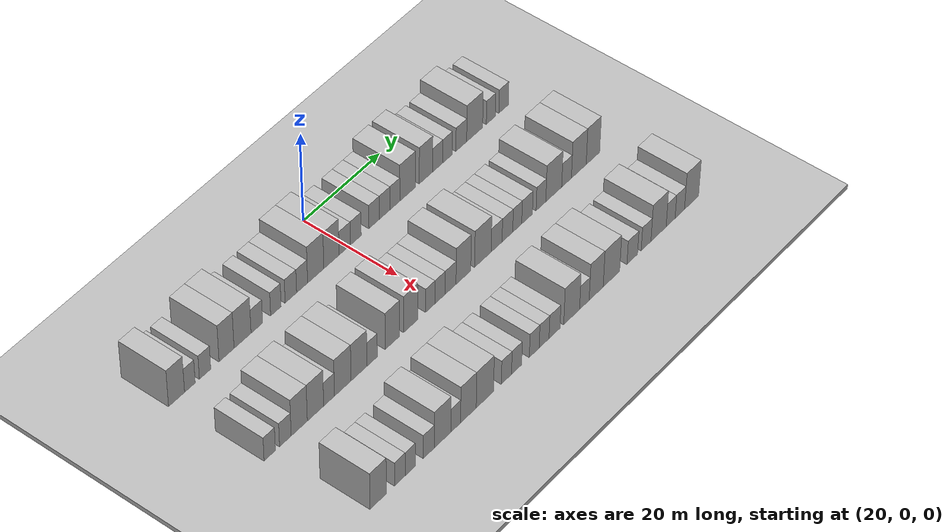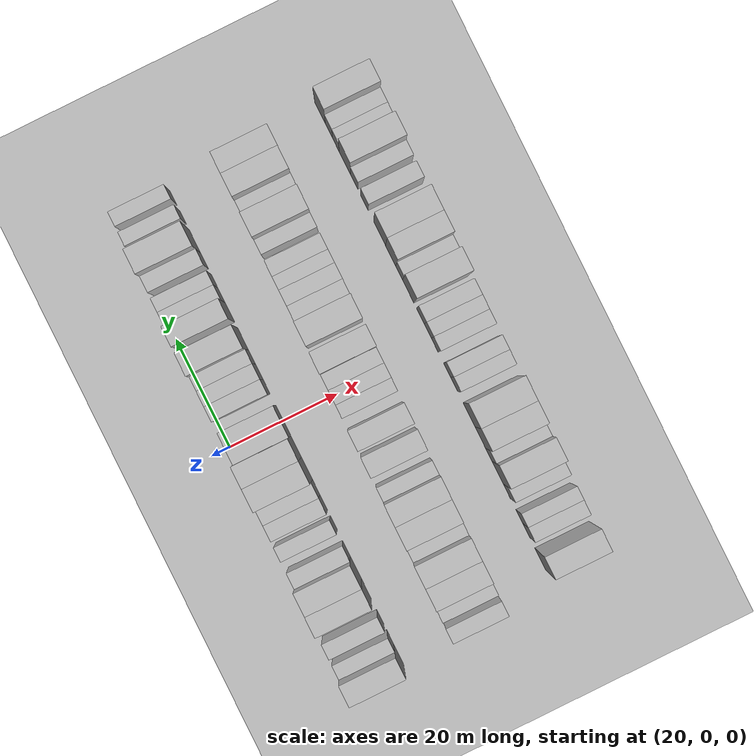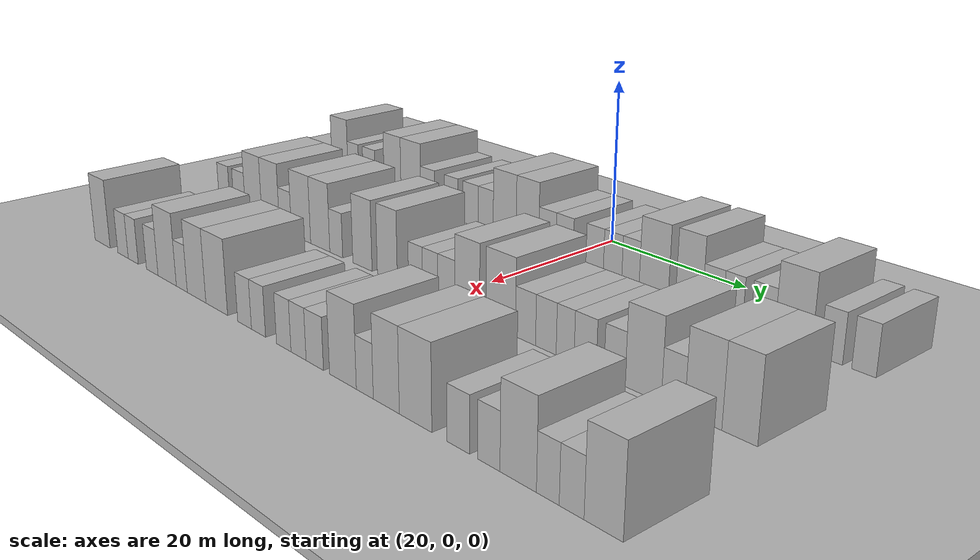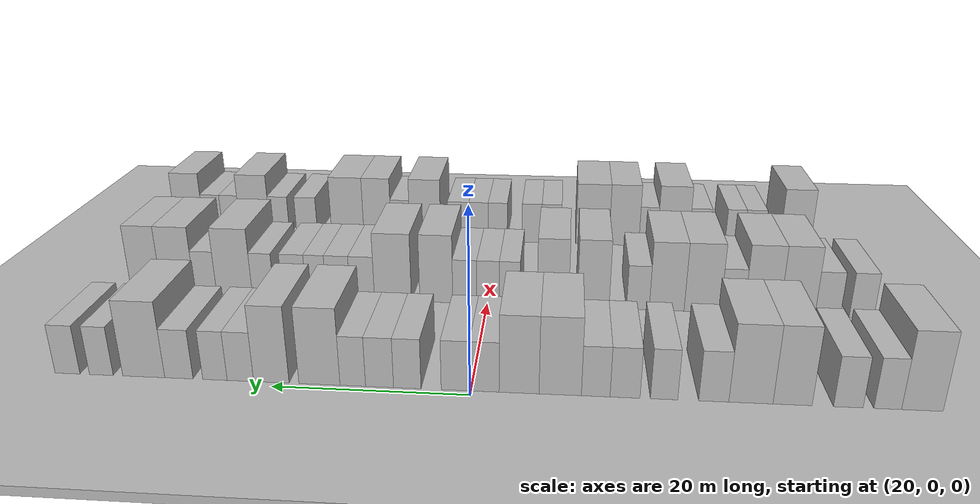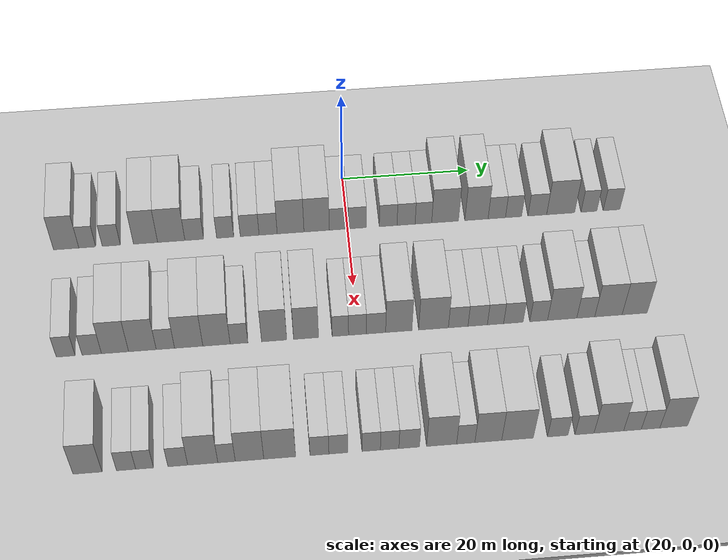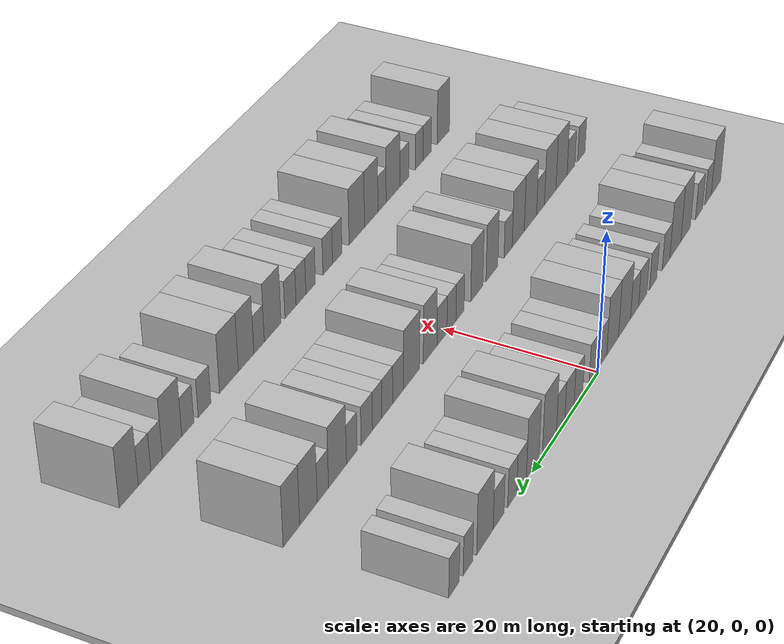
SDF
<sdf version="1.6">
 <world name="default">
  <include><name>ground_plane_1</name><uri>model://HANNAS_ground_plane</uri></include>
  <include>
   <name>ground_plane_2</name>
   <uri>model://HANNAS_ground_plane</uri>
   <pose>100 0 0  0 0 0</pose>
  </include>
  <model name="building_48">
   <static>1</static>
   <pose>25.0000 -43.0749 0 0.000000 0.000000 0.000000</pose>
   <link name="link">
    <pose>0 0 4.50 0 0 0</pose>
    <collision name="collision"><geometry><box><size>10.0000 3.8341 9.0000</size></box></geometry></collision>
    <visual name="visual">
     <cast_shadows>0</cast_shadows>
     <geometry><box><size>10.0000 3.8341 9.0000</size></box></geometry>
     <material>
      <script>
       <uri>model://HANNAS_wall/materials/scripts</uri>
       <uri>model://HANNAS_wall/materials/textures</uri>
       <name>vrc/HANNAS_wall</name>
      </script>
     </material>
    </visual>
   </link>
  </model>
  <model name="building_49">
   <static>1</static>
   <pose>25.0000 -39.8797 0 0.000000 0.000000 0.000000</pose>
   <link name="link">
    <pose>0 0 3.00 0 0 0</pose>
    <collision name="collision"><geometry><box><size>10.0000 2.5561 6.0000</size></box></geometry></collision>
    <visual name="visual">
     <cast_shadows>0</cast_shadows>
     <geometry><box><size>10.0000 2.5561 6.0000</size></box></geometry>
     <material>
      <script>
       <uri>model://HANNAS_wall/materials/scripts</uri>
       <uri>model://HANNAS_wall/materials/textures</uri>
       <name>vrc/HANNAS_wall</name>
      </script>
     </material>
    </visual>
   </link>
  </model>
  <model name="building_50">
   <static>1</static>
   <pose>25.0000 -36.2231 0 0.000000 0.000000 0.000000</pose>
   <link name="link">
    <pose>0 0 3.00 0 0 0</pose>
    <collision name="collision"><geometry><box><size>10.0000 2.7571 6.0000</size></box></geometry></collision>
    <visual name="visual">
     <cast_shadows>0</cast_shadows>
     <geometry><box><size>10.0000 2.7571 6.0000</size></box></geometry>
     <material>
      <script>
       <uri>model://HANNAS_wall/materials/scripts</uri>
       <uri>model://HANNAS_wall/materials/textures</uri>
       <name>vrc/HANNAS_wall</name>
      </script>
     </material>
    </visual>
   </link>
  </model>
  <model name="building_51">
   <static>1</static>
   <pose>25.0000 -31.0059 0 0.000000 0.000000 0.000000</pose>
   <link name="link">
    <pose>0 0 4.50 0 0 0</pose>
    <collision name="collision"><geometry><box><size>10.0000 3.6773 9.0000</size></box></geometry></collision>
    <visual name="visual">
     <cast_shadows>0</cast_shadows>
     <geometry><box><size>10.0000 3.6773 9.0000</size></box></geometry>
     <material>
      <script>
       <uri>model://HANNAS_wall/materials/scripts</uri>
       <uri>model://HANNAS_wall/materials/textures</uri>
       <name>vrc/HANNAS_wall</name>
      </script>
     </material>
    </visual>
   </link>
  </model>
  <model name="building_52">
   <static>1</static>
   <pose>25.0000 -27.0815 0 0.000000 0.000000 0.000000</pose>
   <link name="link">
    <pose>0 0 4.50 0 0 0</pose>
    <collision name="collision"><geometry><box><size>10.0000 4.1716 9.0000</size></box></geometry></collision>
    <visual name="visual">
     <cast_shadows>0</cast_shadows>
     <geometry><box><size>10.0000 4.1716 9.0000</size></box></geometry>
     <material>
      <script>
       <uri>model://HANNAS_wall/materials/scripts</uri>
       <uri>model://HANNAS_wall/materials/textures</uri>
       <name>vrc/HANNAS_wall</name>
      </script>
     </material>
    </visual>
   </link>
  </model>
  <model name="building_53">
   <static>1</static>
   <pose>25.0000 -23.5647 0 0.000000 0.000000 0.000000</pose>
   <link name="link">
    <pose>0 0 3.00 0 0 0</pose>
    <collision name="collision"><geometry><box><size>10.0000 2.8620 6.0000</size></box></geometry></collision>
    <visual name="visual">
     <cast_shadows>0</cast_shadows>
     <geometry><box><size>10.0000 2.8620 6.0000</size></box></geometry>
     <material>
      <script>
       <uri>model://HANNAS_wall/materials/scripts</uri>
       <uri>model://HANNAS_wall/materials/textures</uri>
       <name>vrc/HANNAS_wall</name>
      </script>
     </material>
    </visual>
   </link>
  </model>
  <model name="building_54">
   <static>1</static>
   <pose>25.0000 -18.8264 0 0.000000 0.000000 0.000000</pose>
   <link name="link">
    <pose>0 0 3.00 0 0 0</pose>
    <collision name="collision"><geometry><box><size>10.0000 2.6146 6.0000</size></box></geometry></collision>
    <visual name="visual">
     <cast_shadows>0</cast_shadows>
     <geometry><box><size>10.0000 2.6146 6.0000</size></box></geometry>
     <material>
      <script>
       <uri>model://HANNAS_wall/materials/scripts</uri>
       <uri>model://HANNAS_wall/materials/textures</uri>
       <name>vrc/HANNAS_wall</name>
      </script>
     </material>
    </visual>
   </link>
  </model>
  <model name="building_55">
   <static>1</static>
   <pose>25.0000 -15.0738 0 0.000000 0.000000 0.000000</pose>
   <link name="link">
    <pose>0 0 3.00 0 0 0</pose>
    <collision name="collision"><geometry><box><size>10.0000 2.8906 6.0000</size></box></geometry></collision>
    <visual name="visual">
     <cast_shadows>0</cast_shadows>
     <geometry><box><size>10.0000 2.8906 6.0000</size></box></geometry>
     <material>
      <script>
       <uri>model://HANNAS_wall/materials/scripts</uri>
       <uri>model://HANNAS_wall/materials/textures</uri>
       <name>vrc/HANNAS_wall</name>
      </script>
     </material>
    </visual>
   </link>
  </model>
  <model name="building_56">
   <static>1</static>
   <pose>25.0000 -12.2399 0 0.000000 0.000000 0.000000</pose>
   <link name="link">
    <pose>0 0 3.00 0 0 0</pose>
    <collision name="collision"><geometry><box><size>10.0000 2.7773 6.0000</size></box></geometry></collision>
    <visual name="visual">
     <cast_shadows>0</cast_shadows>
     <geometry><box><size>10.0000 2.7773 6.0000</size></box></geometry>
     <material>
      <script>
       <uri>model://HANNAS_wall/materials/scripts</uri>
       <uri>model://HANNAS_wall/materials/textures</uri>
       <name>vrc/HANNAS_wall</name>
      </script>
     </material>
    </visual>
   </link>
  </model>
  <model name="building_57">
   <static>1</static>
   <pose>25.0000 -8.7892 0 0.000000 0.000000 0.000000</pose>
   <link name="link">
    <pose>0 0 4.50 0 0 0</pose>
    <collision name="collision"><geometry><box><size>10.0000 4.1240 9.0000</size></box></geometry></collision>
    <visual name="visual">
     <cast_shadows>0</cast_shadows>
     <geometry><box><size>10.0000 4.1240 9.0000</size></box></geometry>
     <material>
      <script>
       <uri>model://HANNAS_wall/materials/scripts</uri>
       <uri>model://HANNAS_wall/materials/textures</uri>
       <name>vrc/HANNAS_wall</name>
      </script>
     </material>
    </visual>
   </link>
  </model>
  <model name="building_58">
   <static>1</static>
   <pose>25.0000 -4.7703 0 0.000000 0.000000 0.000000</pose>
   <link name="link">
    <pose>0 0 4.50 0 0 0</pose>
    <collision name="collision"><geometry><box><size>10.0000 3.9138 9.0000</size></box></geometry></collision>
    <visual name="visual">
     <cast_shadows>0</cast_shadows>
     <geometry><box><size>10.0000 3.9138 9.0000</size></box></geometry>
     <material>
      <script>
       <uri>model://HANNAS_wall/materials/scripts</uri>
       <uri>model://HANNAS_wall/materials/textures</uri>
       <name>vrc/HANNAS_wall</name>
      </script>
     </material>
    </visual>
   </link>
  </model>
  <model name="building_59">
   <static>1</static>
   <pose>25.0000 -1.3615 0 0.000000 0.000000 0.000000</pose>
   <link name="link">
    <pose>0 0 3.00 0 0 0</pose>
    <collision name="collision"><geometry><box><size>10.0000 2.9037 6.0000</size></box></geometry></collision>
    <visual name="visual">
     <cast_shadows>0</cast_shadows>
     <geometry><box><size>10.0000 2.9037 6.0000</size></box></geometry>
     <material>
      <script>
       <uri>model://HANNAS_wall/materials/scripts</uri>
       <uri>model://HANNAS_wall/materials/textures</uri>
       <name>vrc/HANNAS_wall</name>
      </script>
     </material>
    </visual>
   </link>
  </model>
  <model name="building_60">
   <static>1</static>
   <pose>25.0000 1.4955 0 0.000000 0.000000 0.000000</pose>
   <link name="link">
    <pose>0 0 3.00 0 0 0</pose>
    <collision name="collision"><geometry><box><size>10.0000 2.8104 6.0000</size></box></geometry></collision>
    <visual name="visual">
     <cast_shadows>0</cast_shadows>
     <geometry><box><size>10.0000 2.8104 6.0000</size></box></geometry>
     <material>
      <script>
       <uri>model://HANNAS_wall/materials/scripts</uri>
       <uri>model://HANNAS_wall/materials/textures</uri>
       <name>vrc/HANNAS_wall</name>
      </script>
     </material>
    </visual>
   </link>
  </model>
  <model name="building_61">
   <static>1</static>
   <pose>25.0000 6.2721 0 0.000000 0.000000 0.000000</pose>
   <link name="link">
    <pose>0 0 3.00 0 0 0</pose>
    <collision name="collision"><geometry><box><size>10.0000 2.7427 6.0000</size></box></geometry></collision>
    <visual name="visual">
     <cast_shadows>0</cast_shadows>
     <geometry><box><size>10.0000 2.7427 6.0000</size></box></geometry>
     <material>
      <script>
       <uri>model://HANNAS_wall/materials/scripts</uri>
       <uri>model://HANNAS_wall/materials/textures</uri>
       <name>vrc/HANNAS_wall</name>
      </script>
     </material>
    </visual>
   </link>
  </model>
  <model name="building_62">
   <static>1</static>
   <pose>25.0000 9.0452 0 0.000000 0.000000 0.000000</pose>
   <link name="link">
    <pose>0 0 3.00 0 0 0</pose>
    <collision name="collision"><geometry><box><size>10.0000 2.8036 6.0000</size></box></geometry></collision>
    <visual name="visual">
     <cast_shadows>0</cast_shadows>
     <geometry><box><size>10.0000 2.8036 6.0000</size></box></geometry>
     <material>
      <script>
       <uri>model://HANNAS_wall/materials/scripts</uri>
       <uri>model://HANNAS_wall/materials/textures</uri>
       <name>vrc/HANNAS_wall</name>
      </script>
     </material>
    </visual>
   </link>
  </model>
  <model name="building_63">
   <static>1</static>
   <pose>25.0000 11.7320 0 0.000000 0.000000 0.000000</pose>
   <link name="link">
    <pose>0 0 3.00 0 0 0</pose>
    <collision name="collision"><geometry><box><size>10.0000 2.5698 6.0000</size></box></geometry></collision>
    <visual name="visual">
     <cast_shadows>0</cast_shadows>
     <geometry><box><size>10.0000 2.5698 6.0000</size></box></geometry>
     <material>
      <script>
       <uri>model://HANNAS_wall/materials/scripts</uri>
       <uri>model://HANNAS_wall/materials/textures</uri>
       <name>vrc/HANNAS_wall</name>
      </script>
     </material>
    </visual>
   </link>
  </model>
  <model name="building_64">
   <static>1</static>
   <pose>25.0000 15.0980 0 0.000000 0.000000 0.000000</pose>
   <link name="link">
    <pose>0 0 4.50 0 0 0</pose>
    <collision name="collision"><geometry><box><size>10.0000 4.1623 9.0000</size></box></geometry></collision>
    <visual name="visual">
     <cast_shadows>0</cast_shadows>
     <geometry><box><size>10.0000 4.1623 9.0000</size></box></geometry>
     <material>
      <script>
       <uri>model://HANNAS_wall/materials/scripts</uri>
       <uri>model://HANNAS_wall/materials/textures</uri>
       <name>vrc/HANNAS_wall</name>
      </script>
     </material>
    </visual>
   </link>
  </model>
  <model name="building_65">
   <static>1</static>
   <pose>25.0000 19.9861 0 0.000000 0.000000 0.000000</pose>
   <link name="link">
    <pose>0 0 4.50 0 0 0</pose>
    <collision name="collision"><geometry><box><size>10.0000 3.6139 9.0000</size></box></geometry></collision>
    <visual name="visual">
     <cast_shadows>0</cast_shadows>
     <geometry><box><size>10.0000 3.6139 9.0000</size></box></geometry>
     <material>
      <script>
       <uri>model://HANNAS_wall/materials/scripts</uri>
       <uri>model://HANNAS_wall/materials/textures</uri>
       <name>vrc/HANNAS_wall</name>
      </script>
     </material>
    </visual>
   </link>
  </model>
  <model name="building_66">
   <static>1</static>
   <pose>25.0000 23.1474 0 0.000000 0.000000 0.000000</pose>
   <link name="link">
    <pose>0 0 3.00 0 0 0</pose>
    <collision name="collision"><geometry><box><size>10.0000 2.7086 6.0000</size></box></geometry></collision>
    <visual name="visual">
     <cast_shadows>0</cast_shadows>
     <geometry><box><size>10.0000 2.7086 6.0000</size></box></geometry>
     <material>
      <script>
       <uri>model://HANNAS_wall/materials/scripts</uri>
       <uri>model://HANNAS_wall/materials/textures</uri>
       <name>vrc/HANNAS_wall</name>
      </script>
     </material>
    </visual>
   </link>
  </model>
  <model name="building_67">
   <static>1</static>
   <pose>25.0000 25.7594 0 0.000000 0.000000 0.000000</pose>
   <link name="link">
    <pose>0 0 3.00 0 0 0</pose>
    <collision name="collision"><geometry><box><size>10.0000 2.5156 6.0000</size></box></geometry></collision>
    <visual name="visual">
     <cast_shadows>0</cast_shadows>
     <geometry><box><size>10.0000 2.5156 6.0000</size></box></geometry>
     <material>
      <script>
       <uri>model://HANNAS_wall/materials/scripts</uri>
       <uri>model://HANNAS_wall/materials/textures</uri>
       <name>vrc/HANNAS_wall</name>
      </script>
     </material>
    </visual>
   </link>
  </model>
  <model name="building_68">
   <static>1</static>
   <pose>25.0000 29.4810 0 0.000000 0.000000 0.000000</pose>
   <link name="link">
    <pose>0 0 3.00 0 0 0</pose>
    <collision name="collision"><geometry><box><size>10.0000 2.9276 6.0000</size></box></geometry></collision>
    <visual name="visual">
     <cast_shadows>0</cast_shadows>
     <geometry><box><size>10.0000 2.9276 6.0000</size></box></geometry>
     <material>
      <script>
       <uri>model://HANNAS_wall/materials/scripts</uri>
       <uri>model://HANNAS_wall/materials/textures</uri>
       <name>vrc/HANNAS_wall</name>
      </script>
     </material>
    </visual>
   </link>
  </model>
  <model name="building_69">
   <static>1</static>
   <pose>25.0000 33.1323 0 0.000000 0.000000 0.000000</pose>
   <link name="link">
    <pose>0 0 4.50 0 0 0</pose>
    <collision name="collision"><geometry><box><size>10.0000 4.3748 9.0000</size></box></geometry></collision>
    <visual name="visual">
     <cast_shadows>0</cast_shadows>
     <geometry><box><size>10.0000 4.3748 9.0000</size></box></geometry>
     <material>
      <script>
       <uri>model://HANNAS_wall/materials/scripts</uri>
       <uri>model://HANNAS_wall/materials/textures</uri>
       <name>vrc/HANNAS_wall</name>
      </script>
     </material>
    </visual>
   </link>
  </model>
  <model name="building_70">
   <static>1</static>
   <pose>25.0000 37.5630 0 0.000000 0.000000 0.000000</pose>
   <link name="link">
    <pose>0 0 3.00 0 0 0</pose>
    <collision name="collision"><geometry><box><size>10.0000 2.4867 6.0000</size></box></geometry></collision>
    <visual name="visual">
     <cast_shadows>0</cast_shadows>
     <geometry><box><size>10.0000 2.4867 6.0000</size></box></geometry>
     <material>
      <script>
       <uri>model://HANNAS_wall/materials/scripts</uri>
       <uri>model://HANNAS_wall/materials/textures</uri>
       <name>vrc/HANNAS_wall</name>
      </script>
     </material>
    </visual>
   </link>
  </model>
  <model name="building_71">
   <static>1</static>
   <pose>25.0000 41.1190 0 0.000000 0.000000 0.000000</pose>
   <link name="link">
    <pose>0 0 3.00 0 0 0</pose>
    <collision name="collision"><geometry><box><size>10.0000 2.6253 6.0000</size></box></geometry></collision>
    <visual name="visual">
     <cast_shadows>0</cast_shadows>
     <geometry><box><size>10.0000 2.6253 6.0000</size></box></geometry>
     <material>
      <script>
       <uri>model://HANNAS_wall/materials/scripts</uri>
       <uri>model://HANNAS_wall/materials/textures</uri>
       <name>vrc/HANNAS_wall</name>
      </script>
     </material>
    </visual>
   </link>
  </model>
  <model name="building_170">
   <static>1</static>
   <pose>44.0000 -42.7477 0 0.000000 0.000000 0.000000</pose>
   <link name="link">
    <pose>0 0 3.00 0 0 0</pose>
    <collision name="collision"><geometry><box><size>10.0000 2.7288 6.0000</size></box></geometry></collision>
    <visual name="visual">
     <cast_shadows>0</cast_shadows>
     <geometry><box><size>10.0000 2.7288 6.0000</size></box></geometry>
     <material>
      <script>
       <uri>model://HANNAS_wall/materials/scripts</uri>
       <uri>model://HANNAS_wall/materials/textures</uri>
       <name>vrc/HANNAS_wall</name>
      </script>
     </material>
    </visual>
   </link>
  </model>
  <model name="building_171">
   <static>1</static>
   <pose>44.0000 -38.9744 0 0.000000 0.000000 0.000000</pose>
   <link name="link">
    <pose>0 0 3.00 0 0 0</pose>
    <collision name="collision"><geometry><box><size>10.0000 2.8179 6.0000</size></box></geometry></collision>
    <visual name="visual">
     <cast_shadows>0</cast_shadows>
     <geometry><box><size>10.0000 2.8179 6.0000</size></box></geometry>
     <material>
      <script>
       <uri>model://HANNAS_wall/materials/scripts</uri>
       <uri>model://HANNAS_wall/materials/textures</uri>
       <name>vrc/HANNAS_wall</name>
      </script>
     </material>
    </visual>
   </link>
  </model>
  <model name="building_172">
   <static>1</static>
   <pose>44.0000 -35.5985 0 0.000000 0.000000 0.000000</pose>
   <link name="link">
    <pose>0 0 4.50 0 0 0</pose>
    <collision name="collision"><geometry><box><size>10.0000 3.9338 9.0000</size></box></geometry></collision>
    <visual name="visual">
     <cast_shadows>0</cast_shadows>
     <geometry><box><size>10.0000 3.9338 9.0000</size></box></geometry>
     <material>
      <script>
       <uri>model://HANNAS_wall/materials/scripts</uri>
       <uri>model://HANNAS_wall/materials/textures</uri>
       <name>vrc/HANNAS_wall</name>
      </script>
     </material>
    </visual>
   </link>
  </model>
  <model name="building_173">
   <static>1</static>
   <pose>44.0000 -31.6231 0 0.000000 0.000000 0.000000</pose>
   <link name="link">
    <pose>0 0 4.50 0 0 0</pose>
    <collision name="collision"><geometry><box><size>10.0000 4.0169 9.0000</size></box></geometry></collision>
    <visual name="visual">
     <cast_shadows>0</cast_shadows>
     <geometry><box><size>10.0000 4.0169 9.0000</size></box></geometry>
     <material>
      <script>
       <uri>model://HANNAS_wall/materials/scripts</uri>
       <uri>model://HANNAS_wall/materials/textures</uri>
       <name>vrc/HANNAS_wall</name>
      </script>
     </material>
    </visual>
   </link>
  </model>
  <model name="building_174">
   <static>1</static>
   <pose>44.0000 -28.2791 0 0.000000 0.000000 0.000000</pose>
   <link name="link">
    <pose>0 0 3.00 0 0 0</pose>
    <collision name="collision"><geometry><box><size>10.0000 2.6711 6.0000</size></box></geometry></collision>
    <visual name="visual">
     <cast_shadows>0</cast_shadows>
     <geometry><box><size>10.0000 2.6711 6.0000</size></box></geometry>
     <material>
      <script>
       <uri>model://HANNAS_wall/materials/scripts</uri>
       <uri>model://HANNAS_wall/materials/textures</uri>
       <name>vrc/HANNAS_wall</name>
      </script>
     </material>
    </visual>
   </link>
  </model>
  <model name="building_175">
   <static>1</static>
   <pose>44.0000 -24.8795 0 0.000000 0.000000 0.000000</pose>
   <link name="link">
    <pose>0 0 4.50 0 0 0</pose>
    <collision name="collision"><geometry><box><size>10.0000 4.1282 9.0000</size></box></geometry></collision>
    <visual name="visual">
     <cast_shadows>0</cast_shadows>
     <geometry><box><size>10.0000 4.1282 9.0000</size></box></geometry>
     <material>
      <script>
       <uri>model://HANNAS_wall/materials/scripts</uri>
       <uri>model://HANNAS_wall/materials/textures</uri>
       <name>vrc/HANNAS_wall</name>
      </script>
     </material>
    </visual>
   </link>
  </model>
  <model name="building_176">
   <static>1</static>
   <pose>44.0000 -20.8224 0 0.000000 0.000000 0.000000</pose>
   <link name="link">
    <pose>0 0 4.50 0 0 0</pose>
    <collision name="collision"><geometry><box><size>10.0000 3.9860 9.0000</size></box></geometry></collision>
    <visual name="visual">
     <cast_shadows>0</cast_shadows>
     <geometry><box><size>10.0000 3.9860 9.0000</size></box></geometry>
     <material>
      <script>
       <uri>model://HANNAS_wall/materials/scripts</uri>
       <uri>model://HANNAS_wall/materials/textures</uri>
       <name>vrc/HANNAS_wall</name>
      </script>
     </material>
    </visual>
   </link>
  </model>
  <model name="building_177">
   <static>1</static>
   <pose>44.0000 -17.5294 0 0.000000 0.000000 0.000000</pose>
   <link name="link">
    <pose>0 0 3.00 0 0 0</pose>
    <collision name="collision"><geometry><box><size>10.0000 2.5999 6.0000</size></box></geometry></collision>
    <visual name="visual">
     <cast_shadows>0</cast_shadows>
     <geometry><box><size>10.0000 2.5999 6.0000</size></box></geometry>
     <material>
      <script>
       <uri>model://HANNAS_wall/materials/scripts</uri>
       <uri>model://HANNAS_wall/materials/textures</uri>
       <name>vrc/HANNAS_wall</name>
      </script>
     </material>
    </visual>
   </link>
  </model>
  <model name="building_178">
   <static>1</static>
   <pose>44.0000 -12.3867 0 0.000000 0.000000 0.000000</pose>
   <link name="link">
    <pose>0 0 4.50 0 0 0</pose>
    <collision name="collision"><geometry><box><size>10.0000 3.6856 9.0000</size></box></geometry></collision>
    <visual name="visual">
     <cast_shadows>0</cast_shadows>
     <geometry><box><size>10.0000 3.6856 9.0000</size></box></geometry>
     <material>
      <script>
       <uri>model://HANNAS_wall/materials/scripts</uri>
       <uri>model://HANNAS_wall/materials/textures</uri>
       <name>vrc/HANNAS_wall</name>
      </script>
     </material>
    </visual>
   </link>
  </model>
  <model name="building_179">
   <static>1</static>
   <pose>44.0000 -7.7085 0 0.000000 0.000000 0.000000</pose>
   <link name="link">
    <pose>0 0 4.50 0 0 0</pose>
    <collision name="collision"><geometry><box><size>10.0000 3.6709 9.0000</size></box></geometry></collision>
    <visual name="visual">
     <cast_shadows>0</cast_shadows>
     <geometry><box><size>10.0000 3.6709 9.0000</size></box></geometry>
     <material>
      <script>
       <uri>model://HANNAS_wall/materials/scripts</uri>
       <uri>model://HANNAS_wall/materials/textures</uri>
       <name>vrc/HANNAS_wall</name>
      </script>
     </material>
    </visual>
   </link>
  </model>
  <model name="building_180">
   <static>1</static>
   <pose>44.0000 -2.6645 0 0.000000 0.000000 0.000000</pose>
   <link name="link">
    <pose>0 0 3.00 0 0 0</pose>
    <collision name="collision"><geometry><box><size>10.0000 2.4171 6.0000</size></box></geometry></collision>
    <visual name="visual">
     <cast_shadows>0</cast_shadows>
     <geometry><box><size>10.0000 2.4171 6.0000</size></box></geometry>
     <material>
      <script>
       <uri>model://HANNAS_wall/materials/scripts</uri>
       <uri>model://HANNAS_wall/materials/textures</uri>
       <name>vrc/HANNAS_wall</name>
      </script>
     </material>
    </visual>
   </link>
  </model>
  <model name="building_181">
   <static>1</static>
   <pose>44.0000 -0.1420 0 0.000000 0.000000 0.000000</pose>
   <link name="link">
    <pose>0 0 3.00 0 0 0</pose>
    <collision name="collision"><geometry><box><size>10.0000 2.6280 6.0000</size></box></geometry></collision>
    <visual name="visual">
     <cast_shadows>0</cast_shadows>
     <geometry><box><size>10.0000 2.6280 6.0000</size></box></geometry>
     <material>
      <script>
       <uri>model://HANNAS_wall/materials/scripts</uri>
       <uri>model://HANNAS_wall/materials/textures</uri>
       <name>vrc/HANNAS_wall</name>
      </script>
     </material>
    </visual>
   </link>
  </model>
  <model name="building_182">
   <static>1</static>
   <pose>44.0000 2.5895 0 0.000000 0.000000 0.000000</pose>
   <link name="link">
    <pose>0 0 3.00 0 0 0</pose>
    <collision name="collision"><geometry><box><size>10.0000 2.8350 6.0000</size></box></geometry></collision>
    <visual name="visual">
     <cast_shadows>0</cast_shadows>
     <geometry><box><size>10.0000 2.8350 6.0000</size></box></geometry>
     <material>
      <script>
       <uri>model://HANNAS_wall/materials/scripts</uri>
       <uri>model://HANNAS_wall/materials/textures</uri>
       <name>vrc/HANNAS_wall</name>
      </script>
     </material>
    </visual>
   </link>
  </model>
  <model name="building_183">
   <static>1</static>
   <pose>44.0000 5.9512 0 0.000000 0.000000 0.000000</pose>
   <link name="link">
    <pose>0 0 4.50 0 0 0</pose>
    <collision name="collision"><geometry><box><size>10.0000 3.8885 9.0000</size></box></geometry></collision>
    <visual name="visual">
     <cast_shadows>0</cast_shadows>
     <geometry><box><size>10.0000 3.8885 9.0000</size></box></geometry>
     <material>
      <script>
       <uri>model://HANNAS_wall/materials/scripts</uri>
       <uri>model://HANNAS_wall/materials/textures</uri>
       <name>vrc/HANNAS_wall</name>
      </script>
     </material>
    </visual>
   </link>
  </model>
  <model name="building_184">
   <static>1</static>
   <pose>44.0000 11.0969 0 0.000000 0.000000 0.000000</pose>
   <link name="link">
    <pose>0 0 4.50 0 0 0</pose>
    <collision name="collision"><geometry><box><size>10.0000 4.4028 9.0000</size></box></geometry></collision>
    <visual name="visual">
     <cast_shadows>0</cast_shadows>
     <geometry><box><size>10.0000 4.4028 9.0000</size></box></geometry>
     <material>
      <script>
       <uri>model://HANNAS_wall/materials/scripts</uri>
       <uri>model://HANNAS_wall/materials/textures</uri>
       <name>vrc/HANNAS_wall</name>
      </script>
     </material>
    </visual>
   </link>
  </model>
  <model name="building_185">
   <static>1</static>
   <pose>44.0000 14.7517 0 0.000000 0.000000 0.000000</pose>
   <link name="link">
    <pose>0 0 3.00 0 0 0</pose>
    <collision name="collision"><geometry><box><size>10.0000 2.9069 6.0000</size></box></geometry></collision>
    <visual name="visual">
     <cast_shadows>0</cast_shadows>
     <geometry><box><size>10.0000 2.9069 6.0000</size></box></geometry>
     <material>
      <script>
       <uri>model://HANNAS_wall/materials/scripts</uri>
       <uri>model://HANNAS_wall/materials/textures</uri>
       <name>vrc/HANNAS_wall</name>
      </script>
     </material>
    </visual>
   </link>
  </model>
  <model name="building_186">
   <static>1</static>
   <pose>44.0000 17.6413 0 0.000000 0.000000 0.000000</pose>
   <link name="link">
    <pose>0 0 3.00 0 0 0</pose>
    <collision name="collision"><geometry><box><size>10.0000 2.8721 6.0000</size></box></geometry></collision>
    <visual name="visual">
     <cast_shadows>0</cast_shadows>
     <geometry><box><size>10.0000 2.8721 6.0000</size></box></geometry>
     <material>
      <script>
       <uri>model://HANNAS_wall/materials/scripts</uri>
       <uri>model://HANNAS_wall/materials/textures</uri>
       <name>vrc/HANNAS_wall</name>
      </script>
     </material>
    </visual>
   </link>
  </model>
  <model name="building_187">
   <static>1</static>
   <pose>44.0000 20.2880 0 0.000000 0.000000 0.000000</pose>
   <link name="link">
    <pose>0 0 3.00 0 0 0</pose>
    <collision name="collision"><geometry><box><size>10.0000 2.4214 6.0000</size></box></geometry></collision>
    <visual name="visual">
     <cast_shadows>0</cast_shadows>
     <geometry><box><size>10.0000 2.4214 6.0000</size></box></geometry>
     <material>
      <script>
       <uri>model://HANNAS_wall/materials/scripts</uri>
       <uri>model://HANNAS_wall/materials/textures</uri>
       <name>vrc/HANNAS_wall</name>
      </script>
     </material>
    </visual>
   </link>
  </model>
  <model name="building_188">
   <static>1</static>
   <pose>44.0000 22.9495 0 0.000000 0.000000 0.000000</pose>
   <link name="link">
    <pose>0 0 3.00 0 0 0</pose>
    <collision name="collision"><geometry><box><size>10.0000 2.9017 6.0000</size></box></geometry></collision>
    <visual name="visual">
     <cast_shadows>0</cast_shadows>
     <geometry><box><size>10.0000 2.9017 6.0000</size></box></geometry>
     <material>
      <script>
       <uri>model://HANNAS_wall/materials/scripts</uri>
       <uri>model://HANNAS_wall/materials/textures</uri>
       <name>vrc/HANNAS_wall</name>
      </script>
     </material>
    </visual>
   </link>
  </model>
  <model name="building_189">
   <static>1</static>
   <pose>44.0000 26.7255 0 0.000000 0.000000 0.000000</pose>
   <link name="link">
    <pose>0 0 3.00 0 0 0</pose>
    <collision name="collision"><geometry><box><size>10.0000 2.6503 6.0000</size></box></geometry></collision>
    <visual name="visual">
     <cast_shadows>0</cast_shadows>
     <geometry><box><size>10.0000 2.6503 6.0000</size></box></geometry>
     <material>
      <script>
       <uri>model://HANNAS_wall/materials/scripts</uri>
       <uri>model://HANNAS_wall/materials/textures</uri>
       <name>vrc/HANNAS_wall</name>
      </script>
     </material>
    </visual>
   </link>
  </model>
  <model name="building_190">
   <static>1</static>
   <pose>44.0000 30.2309 0 0.000000 0.000000 0.000000</pose>
   <link name="link">
    <pose>0 0 4.50 0 0 0</pose>
    <collision name="collision"><geometry><box><size>10.0000 4.3605 9.0000</size></box></geometry></collision>
    <visual name="visual">
     <cast_shadows>0</cast_shadows>
     <geometry><box><size>10.0000 4.3605 9.0000</size></box></geometry>
     <material>
      <script>
       <uri>model://HANNAS_wall/materials/scripts</uri>
       <uri>model://HANNAS_wall/materials/textures</uri>
       <name>vrc/HANNAS_wall</name>
      </script>
     </material>
    </visual>
   </link>
  </model>
  <model name="building_191">
   <static>1</static>
   <pose>44.0000 33.7560 0 0.000000 0.000000 0.000000</pose>
   <link name="link">
    <pose>0 0 3.00 0 0 0</pose>
    <collision name="collision"><geometry><box><size>10.0000 2.6896 6.0000</size></box></geometry></collision>
    <visual name="visual">
     <cast_shadows>0</cast_shadows>
     <geometry><box><size>10.0000 2.6896 6.0000</size></box></geometry>
     <material>
      <script>
       <uri>model://HANNAS_wall/materials/scripts</uri>
       <uri>model://HANNAS_wall/materials/textures</uri>
       <name>vrc/HANNAS_wall</name>
      </script>
     </material>
    </visual>
   </link>
  </model>
  <model name="building_192">
   <static>1</static>
   <pose>44.0000 37.1510 0 0.000000 0.000000 0.000000</pose>
   <link name="link">
    <pose>0 0 4.50 0 0 0</pose>
    <collision name="collision"><geometry><box><size>10.0000 4.1006 9.0000</size></box></geometry></collision>
    <visual name="visual">
     <cast_shadows>0</cast_shadows>
     <geometry><box><size>10.0000 4.1006 9.0000</size></box></geometry>
     <material>
      <script>
       <uri>model://HANNAS_wall/materials/scripts</uri>
       <uri>model://HANNAS_wall/materials/textures</uri>
       <name>vrc/HANNAS_wall</name>
      </script>
     </material>
    </visual>
   </link>
  </model>
  <model name="building_193">
   <static>1</static>
   <pose>44.0000 41.0820 0 0.000000 0.000000 0.000000</pose>
   <link name="link">
    <pose>0 0 4.50 0 0 0</pose>
    <collision name="collision"><geometry><box><size>10.0000 3.7614 9.0000</size></box></geometry></collision>
    <visual name="visual">
     <cast_shadows>0</cast_shadows>
     <geometry><box><size>10.0000 3.7614 9.0000</size></box></geometry>
     <material>
      <script>
       <uri>model://HANNAS_wall/materials/scripts</uri>
       <uri>model://HANNAS_wall/materials/textures</uri>
       <name>vrc/HANNAS_wall</name>
      </script>
     </material>
    </visual>
   </link>
  </model>
  <model name="building_286">
   <static>1</static>
   <pose>63.0000 -39.3400 0 0.000000 0.000000 0.000000</pose>
   <link name="link">
    <pose>0 0 4.50 0 0 0</pose>
    <collision name="collision"><geometry><box><size>10.0000 3.9989 9.0000</size></box></geometry></collision>
    <visual name="visual">
     <cast_shadows>0</cast_shadows>
     <geometry><box><size>10.0000 3.9989 9.0000</size></box></geometry>
     <material>
      <script>
       <uri>model://HANNAS_wall/materials/scripts</uri>
       <uri>model://HANNAS_wall/materials/textures</uri>
       <name>vrc/HANNAS_wall</name>
      </script>
     </material>
    </visual>
   </link>
  </model>
  <model name="building_287">
   <static>1</static>
   <pose>63.0000 -34.0163 0 0.000000 0.000000 0.000000</pose>
   <link name="link">
    <pose>0 0 3.00 0 0 0</pose>
    <collision name="collision"><geometry><box><size>10.0000 2.6486 6.0000</size></box></geometry></collision>
    <visual name="visual">
     <cast_shadows>0</cast_shadows>
     <geometry><box><size>10.0000 2.6486 6.0000</size></box></geometry>
     <material>
      <script>
       <uri>model://HANNAS_wall/materials/scripts</uri>
       <uri>model://HANNAS_wall/materials/textures</uri>
       <name>vrc/HANNAS_wall</name>
      </script>
     </material>
    </visual>
   </link>
  </model>
  <model name="building_288">
   <static>1</static>
   <pose>63.0000 -31.4601 0 0.000000 0.000000 0.000000</pose>
   <link name="link">
    <pose>0 0 3.00 0 0 0</pose>
    <collision name="collision"><geometry><box><size>10.0000 2.4638 6.0000</size></box></geometry></collision>
    <visual name="visual">
     <cast_shadows>0</cast_shadows>
     <geometry><box><size>10.0000 2.4638 6.0000</size></box></geometry>
     <material>
      <script>
       <uri>model://HANNAS_wall/materials/scripts</uri>
       <uri>model://HANNAS_wall/materials/textures</uri>
       <name>vrc/HANNAS_wall</name>
      </script>
     </material>
    </visual>
   </link>
  </model>
  <model name="building_289">
   <static>1</static>
   <pose>63.0000 -26.8565 0 0.000000 0.000000 0.000000</pose>
   <link name="link">
    <pose>0 0 3.00 0 0 0</pose>
    <collision name="collision"><geometry><box><size>10.0000 2.7435 6.0000</size></box></geometry></collision>
    <visual name="visual">
     <cast_shadows>0</cast_shadows>
     <geometry><box><size>10.0000 2.7435 6.0000</size></box></geometry>
     <material>
      <script>
       <uri>model://HANNAS_wall/materials/scripts</uri>
       <uri>model://HANNAS_wall/materials/textures</uri>
       <name>vrc/HANNAS_wall</name>
      </script>
     </material>
    </visual>
   </link>
  </model>
  <model name="building_290">
   <static>1</static>
   <pose>63.0000 -23.3932 0 0.000000 0.000000 0.000000</pose>
   <link name="link">
    <pose>0 0 4.50 0 0 0</pose>
    <collision name="collision"><geometry><box><size>10.0000 4.1830 9.0000</size></box></geometry></collision>
    <visual name="visual">
     <cast_shadows>0</cast_shadows>
     <geometry><box><size>10.0000 4.1830 9.0000</size></box></geometry>
     <material>
      <script>
       <uri>model://HANNAS_wall/materials/scripts</uri>
       <uri>model://HANNAS_wall/materials/textures</uri>
       <name>vrc/HANNAS_wall</name>
      </script>
     </material>
    </visual>
   </link>
  </model>
  <model name="building_291">
   <static>1</static>
   <pose>63.0000 -20.0897 0 0.000000 0.000000 0.000000</pose>
   <link name="link">
    <pose>0 0 3.00 0 0 0</pose>
    <collision name="collision"><geometry><box><size>10.0000 2.4239 6.0000</size></box></geometry></collision>
    <visual name="visual">
     <cast_shadows>0</cast_shadows>
     <geometry><box><size>10.0000 2.4239 6.0000</size></box></geometry>
     <material>
      <script>
       <uri>model://HANNAS_wall/materials/scripts</uri>
       <uri>model://HANNAS_wall/materials/textures</uri>
       <name>vrc/HANNAS_wall</name>
      </script>
     </material>
    </visual>
   </link>
  </model>
  <model name="building_292">
   <static>1</static>
   <pose>63.0000 -16.8915 0 0.000000 0.000000 0.000000</pose>
   <link name="link">
    <pose>0 0 4.50 0 0 0</pose>
    <collision name="collision"><geometry><box><size>10.0000 3.9726 9.0000</size></box></geometry></collision>
    <visual name="visual">
     <cast_shadows>0</cast_shadows>
     <geometry><box><size>10.0000 3.9726 9.0000</size></box></geometry>
     <material>
      <script>
       <uri>model://HANNAS_wall/materials/scripts</uri>
       <uri>model://HANNAS_wall/materials/textures</uri>
       <name>vrc/HANNAS_wall</name>
      </script>
     </material>
    </visual>
   </link>
  </model>
  <model name="building_293">
   <static>1</static>
   <pose>63.0000 -12.6843 0 0.000000 0.000000 0.000000</pose>
   <link name="link">
    <pose>0 0 4.50 0 0 0</pose>
    <collision name="collision"><geometry><box><size>10.0000 4.4418 9.0000</size></box></geometry></collision>
    <visual name="visual">
     <cast_shadows>0</cast_shadows>
     <geometry><box><size>10.0000 4.4418 9.0000</size></box></geometry>
     <material>
      <script>
       <uri>model://HANNAS_wall/materials/scripts</uri>
       <uri>model://HANNAS_wall/materials/textures</uri>
       <name>vrc/HANNAS_wall</name>
      </script>
     </material>
    </visual>
   </link>
  </model>
  <model name="building_294">
   <static>1</static>
   <pose>63.0000 -7.1370 0 0.000000 0.000000 0.000000</pose>
   <link name="link">
    <pose>0 0 3.00 0 0 0</pose>
    <collision name="collision"><geometry><box><size>10.0000 2.6527 6.0000</size></box></geometry></collision>
    <visual name="visual">
     <cast_shadows>0</cast_shadows>
     <geometry><box><size>10.0000 2.6527 6.0000</size></box></geometry>
     <material>
      <script>
       <uri>model://HANNAS_wall/materials/scripts</uri>
       <uri>model://HANNAS_wall/materials/textures</uri>
       <name>vrc/HANNAS_wall</name>
      </script>
     </material>
    </visual>
   </link>
  </model>
  <model name="building_295">
   <static>1</static>
   <pose>63.0000 -4.4916 0 0.000000 0.000000 0.000000</pose>
   <link name="link">
    <pose>0 0 3.00 0 0 0</pose>
    <collision name="collision"><geometry><box><size>10.0000 2.6380 6.0000</size></box></geometry></collision>
    <visual name="visual">
     <cast_shadows>0</cast_shadows>
     <geometry><box><size>10.0000 2.6380 6.0000</size></box></geometry>
     <material>
      <script>
       <uri>model://HANNAS_wall/materials/scripts</uri>
       <uri>model://HANNAS_wall/materials/textures</uri>
       <name>vrc/HANNAS_wall</name>
      </script>
     </material>
    </visual>
   </link>
  </model>
  <model name="building_296">
   <static>1</static>
   <pose>63.0000 0.1166 0 0.000000 0.000000 0.000000</pose>
   <link name="link">
    <pose>0 0 3.00 0 0 0</pose>
    <collision name="collision"><geometry><box><size>10.0000 2.5782 6.0000</size></box></geometry></collision>
    <visual name="visual">
     <cast_shadows>0</cast_shadows>
     <geometry><box><size>10.0000 2.5782 6.0000</size></box></geometry>
     <material>
      <script>
       <uri>model://HANNAS_wall/materials/scripts</uri>
       <uri>model://HANNAS_wall/materials/textures</uri>
       <name>vrc/HANNAS_wall</name>
      </script>
     </material>
    </visual>
   </link>
  </model>
  <model name="building_297">
   <static>1</static>
   <pose>63.0000 2.7060 0 0.000000 0.000000 0.000000</pose>
   <link name="link">
    <pose>0 0 3.00 0 0 0</pose>
    <collision name="collision"><geometry><box><size>10.0000 2.6006 6.0000</size></box></geometry></collision>
    <visual name="visual">
     <cast_shadows>0</cast_shadows>
     <geometry><box><size>10.0000 2.6006 6.0000</size></box></geometry>
     <material>
      <script>
       <uri>model://HANNAS_wall/materials/scripts</uri>
       <uri>model://HANNAS_wall/materials/textures</uri>
       <name>vrc/HANNAS_wall</name>
      </script>
     </material>
    </visual>
   </link>
  </model>
  <model name="building_298">
   <static>1</static>
   <pose>63.0000 5.4548 0 0.000000 0.000000 0.000000</pose>
   <link name="link">
    <pose>0 0 3.00 0 0 0</pose>
    <collision name="collision"><geometry><box><size>10.0000 2.8970 6.0000</size></box></geometry></collision>
    <visual name="visual">
     <cast_shadows>0</cast_shadows>
     <geometry><box><size>10.0000 2.8970 6.0000</size></box></geometry>
     <material>
      <script>
       <uri>model://HANNAS_wall/materials/scripts</uri>
       <uri>model://HANNAS_wall/materials/textures</uri>
       <name>vrc/HANNAS_wall</name>
      </script>
     </material>
    </visual>
   </link>
  </model>
  <model name="building_299">
   <static>1</static>
   <pose>63.0000 10.0203 0 0.000000 0.000000 0.000000</pose>
   <link name="link">
    <pose>0 0 4.50 0 0 0</pose>
    <collision name="collision"><geometry><box><size>10.0000 4.2339 9.0000</size></box></geometry></collision>
    <visual name="visual">
     <cast_shadows>0</cast_shadows>
     <geometry><box><size>10.0000 4.2339 9.0000</size></box></geometry>
     <material>
      <script>
       <uri>model://HANNAS_wall/materials/scripts</uri>
       <uri>model://HANNAS_wall/materials/textures</uri>
       <name>vrc/HANNAS_wall</name>
      </script>
     </material>
    </visual>
   </link>
  </model>
  <model name="building_300">
   <static>1</static>
   <pose>63.0000 13.4242 0 0.000000 0.000000 0.000000</pose>
   <link name="link">
    <pose>0 0 3.00 0 0 0</pose>
    <collision name="collision"><geometry><box><size>10.0000 2.5740 6.0000</size></box></geometry></collision>
    <visual name="visual">
     <cast_shadows>0</cast_shadows>
     <geometry><box><size>10.0000 2.5740 6.0000</size></box></geometry>
     <material>
      <script>
       <uri>model://HANNAS_wall/materials/scripts</uri>
       <uri>model://HANNAS_wall/materials/textures</uri>
       <name>vrc/HANNAS_wall</name>
      </script>
     </material>
    </visual>
   </link>
  </model>
  <model name="building_301">
   <static>1</static>
   <pose>63.0000 16.6091 0 0.000000 0.000000 0.000000</pose>
   <link name="link">
    <pose>0 0 4.50 0 0 0</pose>
    <collision name="collision"><geometry><box><size>10.0000 3.7958 9.0000</size></box></geometry></collision>
    <visual name="visual">
     <cast_shadows>0</cast_shadows>
     <geometry><box><size>10.0000 3.7958 9.0000</size></box></geometry>
     <material>
      <script>
       <uri>model://HANNAS_wall/materials/scripts</uri>
       <uri>model://HANNAS_wall/materials/textures</uri>
       <name>vrc/HANNAS_wall</name>
      </script>
     </material>
    </visual>
   </link>
  </model>
  <model name="building_302">
   <static>1</static>
   <pose>63.0000 20.7505 0 0.000000 0.000000 0.000000</pose>
   <link name="link">
    <pose>0 0 4.50 0 0 0</pose>
    <collision name="collision"><geometry><box><size>10.0000 4.4870 9.0000</size></box></geometry></collision>
    <visual name="visual">
     <cast_shadows>0</cast_shadows>
     <geometry><box><size>10.0000 4.4870 9.0000</size></box></geometry>
     <material>
      <script>
       <uri>model://HANNAS_wall/materials/scripts</uri>
       <uri>model://HANNAS_wall/materials/textures</uri>
       <name>vrc/HANNAS_wall</name>
      </script>
     </material>
    </visual>
   </link>
  </model>
  <model name="building_303">
   <static>1</static>
   <pose>63.0000 26.4510 0 0.000000 0.000000 0.000000</pose>
   <link name="link">
    <pose>0 0 3.00 0 0 0</pose>
    <collision name="collision"><geometry><box><size>10.0000 2.9140 6.0000</size></box></geometry></collision>
    <visual name="visual">
     <cast_shadows>0</cast_shadows>
     <geometry><box><size>10.0000 2.9140 6.0000</size></box></geometry>
     <material>
      <script>
       <uri>model://HANNAS_wall/materials/scripts</uri>
       <uri>model://HANNAS_wall/materials/textures</uri>
       <name>vrc/HANNAS_wall</name>
      </script>
     </material>
    </visual>
   </link>
  </model>
  <model name="building_304">
   <static>1</static>
   <pose>63.0000 30.2657 0 0.000000 0.000000 0.000000</pose>
   <link name="link">
    <pose>0 0 3.00 0 0 0</pose>
    <collision name="collision"><geometry><box><size>10.0000 2.7154 6.0000</size></box></geometry></collision>
    <visual name="visual">
     <cast_shadows>0</cast_shadows>
     <geometry><box><size>10.0000 2.7154 6.0000</size></box></geometry>
     <material>
      <script>
       <uri>model://HANNAS_wall/materials/scripts</uri>
       <uri>model://HANNAS_wall/materials/textures</uri>
       <name>vrc/HANNAS_wall</name>
      </script>
     </material>
    </visual>
   </link>
  </model>
  <model name="building_305">
   <static>1</static>
   <pose>63.0000 33.7375 0 0.000000 0.000000 0.000000</pose>
   <link name="link">
    <pose>0 0 4.50 0 0 0</pose>
    <collision name="collision"><geometry><box><size>10.0000 4.2283 9.0000</size></box></geometry></collision>
    <visual name="visual">
     <cast_shadows>0</cast_shadows>
     <geometry><box><size>10.0000 4.2283 9.0000</size></box></geometry>
     <material>
      <script>
       <uri>model://HANNAS_wall/materials/scripts</uri>
       <uri>model://HANNAS_wall/materials/textures</uri>
       <name>vrc/HANNAS_wall</name>
      </script>
     </material>
    </visual>
   </link>
  </model>
  <model name="building_306">
   <static>1</static>
   <pose>63.0000 37.1081 0 0.000000 0.000000 0.000000</pose>
   <link name="link">
    <pose>0 0 3.00 0 0 0</pose>
    <collision name="collision"><geometry><box><size>10.0000 2.5129 6.0000</size></box></geometry></collision>
    <visual name="visual">
     <cast_shadows>0</cast_shadows>
     <geometry><box><size>10.0000 2.5129 6.0000</size></box></geometry>
     <material>
      <script>
       <uri>model://HANNAS_wall/materials/scripts</uri>
       <uri>model://HANNAS_wall/materials/textures</uri>
       <name>vrc/HANNAS_wall</name>
      </script>
     </material>
    </visual>
   </link>
  </model>
  <model name="building_307">
   <static>1</static>
   <pose>63.0000 39.6885 0 0.000000 0.000000 0.000000</pose>
   <link name="link">
    <pose>0 0 3.00 0 0 0</pose>
    <collision name="collision"><geometry><box><size>10.0000 2.6478 6.0000</size></box></geometry></collision>
    <visual name="visual">
     <cast_shadows>0</cast_shadows>
     <geometry><box><size>10.0000 2.6478 6.0000</size></box></geometry>
     <material>
      <script>
       <uri>model://HANNAS_wall/materials/scripts</uri>
       <uri>model://HANNAS_wall/materials/textures</uri>
       <name>vrc/HANNAS_wall</name>
      </script>
     </material>
    </visual>
   </link>
  </model>
  <model name="building_308">
   <static>1</static>
   <pose>63.0000 43.0035 0 0.000000 0.000000 0.000000</pose>
   <link name="link">
    <pose>0 0 4.50 0 0 0</pose>
    <collision name="collision"><geometry><box><size>10.0000 3.9822 9.0000</size></box></geometry></collision>
    <visual name="visual">
     <cast_shadows>0</cast_shadows>
     <geometry><box><size>10.0000 3.9822 9.0000</size></box></geometry>
     <material>
      <script>
       <uri>model://HANNAS_wall/materials/scripts</uri>
       <uri>model://HANNAS_wall/materials/textures</uri>
       <name>vrc/HANNAS_wall</name>
      </script>
     </material>
    </visual>
   </link>
  </model>
 </world>
</sdf>
